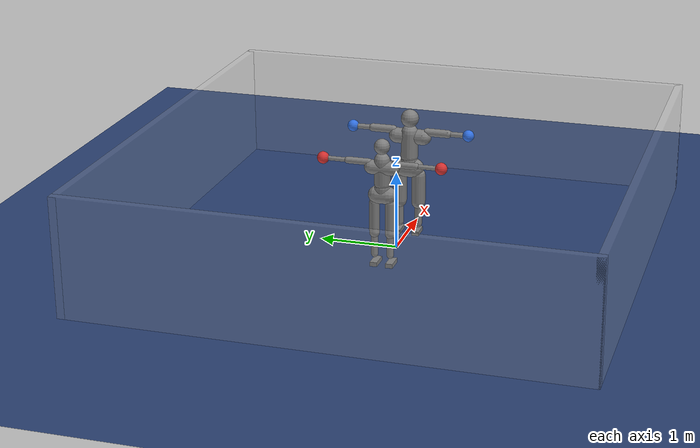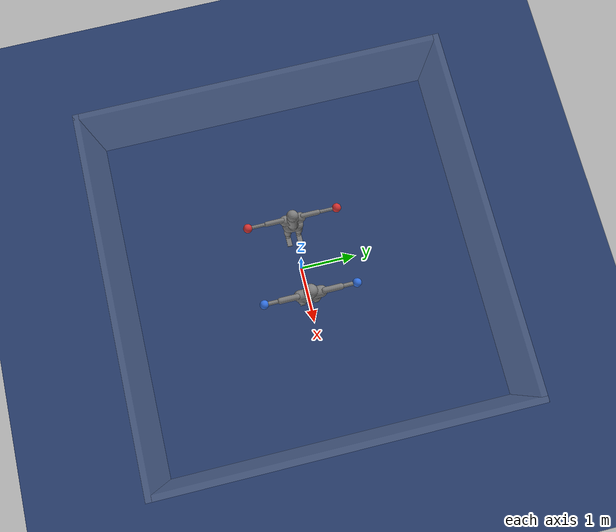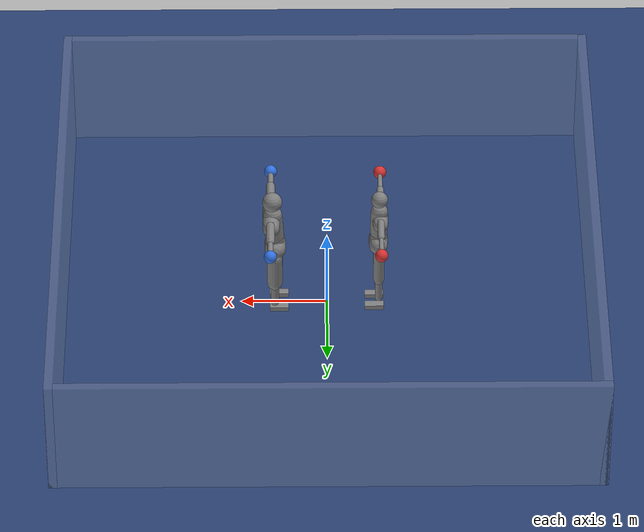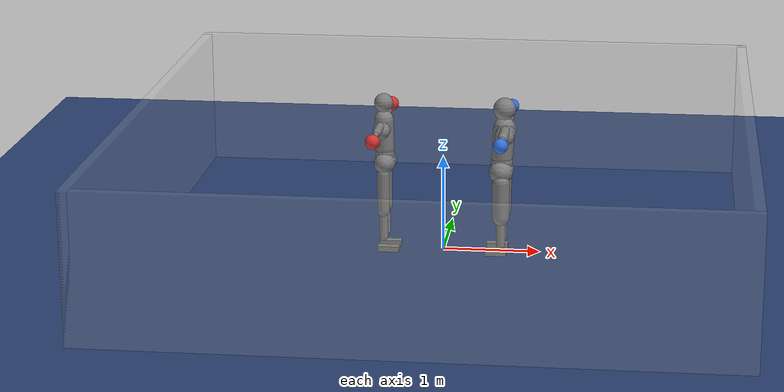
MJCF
<mujoco model="nick_vs_lilmatt_spar">
  <compiler angle="degree" inertiafromgeom="true" autolimits="true"/>
  <option timestep="0.005" iterations="10" ls_iterations="10" integrator="implicitfast">
    <flag eulerdamp="disable"/>
  </option>
  <default>
    <geom contype="1" conaffinity="1" condim="3" friction="1.0 0.005 0.0001" density="1000" margin="0"/>
    <joint limited="true"/>
    <position ctrllimited="true"/>
  </default>
  <asset>
    <texture name="grid" type="2d" builtin="checker" rgb1=".18 .28 .48" rgb2=".14 .22 .40" width="300" height="300"/>
    <material name="grid" texture="grid" texrepeat="6 6" reflectance="0"/>
  </asset>
  <worldbody>
    <light pos="0 0 5" dir="0 0 -1" directional="true"/>
    <geom name="floor" type="plane" size="0 0 0.05" material="grid" friction="1.0 0.005 0.0001"/>
    <geom name="rope_n" type="box" pos="0.0000 3.1000 0.7500" size="3.1500 0.0500 0.7500" rgba="0.8 0.8 0.8 0.15"/>
    <geom name="rope_s" type="box" pos="0.0000 -3.1000 0.7500" size="3.1500 0.0500 0.7500" rgba="0.8 0.8 0.8 0.15"/>
    <geom name="rope_e" type="box" pos="3.1000 0.0000 0.7500" size="0.0500 3.1500 0.7500" rgba="0.8 0.8 0.8 0.15"/>
    <geom name="rope_w" type="box" pos="-3.1000 0.0000 0.7500" size="0.0500 3.1500 0.7500" rgba="0.8 0.8 0.8 0.15"/>
    <body name="a_pelvis" pos="-0.6000 0.0000 0.9269" quat="1.00000 0 0 0.00000">
      <freejoint name="a_root"/>
      <geom name="a_pelvis_geom" type="capsule" fromto="0.0000 -0.0700 0.0000 0.0000 0.0700 0.0000" size="0.1090" mass="4.9049" />
      <geom name="a_pelvis_up" type="capsule" fromto="0.0000 0.0000 0.0000 -0.0026 0.0000 0.1033" size="0.0981" mass="3.2601" />
      <body name="a_torso" pos="-0.0026 0.0000 0.1233">
        <joint name="a_abdomen_z" type="hinge" axis="0 0 1" range="-45 45" damping="0.5" armature="0.08" stiffness="0"/>
        <joint name="a_abdomen_y" type="hinge" axis="0 1 0" range="-60 30" damping="0.5" armature="0.08" stiffness="0"/>
        <joint name="a_abdomen_x" type="hinge" axis="1 0 0" range="-35 35" damping="0.5" armature="0.08" stiffness="0"/>
        <geom name="a_torso_geom" type="capsule" fromto="0.0000 0.0000 0.0200 -0.0072 0.0000 0.3240" size="0.0987" mass="20.4125" />
        <geom name="a_chest_geom" type="capsule" fromto="-0.0187 -0.1313 0.2370 -0.0187 0.1313 0.2370" size="0.0888" mass="0.5"/>
        <geom name="a_head_geom" type="sphere" pos="-0.0087 0.0000 0.5025" size="0.0973" mass="4.6575" />
        <body name="a_upper_arm_l" pos="-0.0234 0.1641 0.2962">
          <joint name="a_shoulder_x_l" type="hinge" axis="1 0 0" range="-170 30" damping="0.5" armature="0.03" stiffness="0"/>
          <joint name="a_shoulder_z_l" type="hinge" axis="0 0 1" range="-110 110" damping="0.5" armature="0.03" stiffness="0"/>
          <geom name="a_upper_arm_l_geom" type="capsule" fromto="0.0000 0.0000 0.0000 0.0000 0.2664 0.0000" size="0.0419" mass="1.6100" />
          <body name="a_forearm_l" pos="0.0000 0.2664 0.0000">
            <joint name="a_elbow_l" type="hinge" axis="0 0 1" range="-150 0" damping="0.5" armature="0.02" stiffness="0"/>
            <geom name="a_forearm_l_geom" type="capsule" fromto="0.0000 0.0000 0.0000 0.0000 0.2467 0.0000" size="0.0280" mass="0.9200" />
            <geom name="a_glove_l" type="sphere" pos="0.0000 0.3142 0.0000" size="0.0750" mass="0.6280" rgba="0.85 0.2 0.2 1"/>
          </body>
        </body>
        <body name="a_upper_arm_r" pos="-0.0234 -0.1641 0.2962">
          <joint name="a_shoulder_x_r" type="hinge" axis="1 0 0" range="-30 170" damping="0.5" armature="0.03" stiffness="0"/>
          <joint name="a_shoulder_z_r" type="hinge" axis="0 0 1" range="-110 110" damping="0.5" armature="0.03" stiffness="0"/>
          <geom name="a_upper_arm_r_geom" type="capsule" fromto="0.0000 0.0000 0.0000 0.0000 -0.2664 0.0000" size="0.0419" mass="1.6100" />
          <body name="a_forearm_r" pos="0.0000 -0.2664 0.0000">
            <joint name="a_elbow_r" type="hinge" axis="0 0 1" range="0 150" damping="0.5" armature="0.02" stiffness="0"/>
            <geom name="a_forearm_r_geom" type="capsule" fromto="0.0000 0.0000 0.0000 0.0000 -0.2467 0.0000" size="0.0280" mass="0.9200" />
            <geom name="a_glove_r" type="sphere" pos="0.0000 -0.3142 0.0000" size="0.0750" mass="0.6280" rgba="0.85 0.2 0.2 1"/>
          </body>
        </body>
      </body>
      <body name="a_thigh_l" pos="-0.0079 0.1002 -0.0993">
        <joint name="a_hip_x_l" type="hinge" axis="1 0 0" range="-40 40" damping="0.5" armature="0.1" stiffness="0"/>
        <joint name="a_hip_z_l" type="hinge" axis="0 0 1" range="-35 35" damping="0.5" armature="0.1" stiffness="0"/>
        <joint name="a_hip_y_l" type="hinge" axis="0 1 0" range="-120 30" damping="0.5" armature="0.1" stiffness="0"/>
        <geom name="a_thigh_l_geom" type="capsule" fromto="0.0000 0.0000 0.0000 0.0000 0.0000 -0.4004" size="0.0639" mass="5.7500" />
        <body name="a_shin_l" pos="0.0000 0.0000 -0.4004">
          <joint name="a_knee_l" type="hinge" axis="0 1 0" range="0 150" damping="0.5" armature="0.1" stiffness="0"/>
          <geom name="a_shin_l_geom" type="capsule" fromto="0.0000 0.0000 0.0000 0.0000 0.0000 -0.2841" size="0.0429" mass="2.6738" />
          <body name="a_foot_l" pos="0.0000 0.0000 -0.2841">
            <joint name="a_ankle_y_l" type="hinge" axis="0 1 0" range="-20 50" damping="0.5" armature="0.03" stiffness="0"/>
            <joint name="a_ankle_x_l" type="hinge" axis="1 0 0" range="-25 25" damping="0.5" armature="0.03" stiffness="0"/>
            <geom name="a_foot_l_geom" type="box" pos="0.0506 0.0000 -0.1233" size="0.1100 0.0450 0.0280" mass="0.8337" friction="1.0 0.005 0.0001"/>
            <site name="a_foot_l_site" pos="0.0506 0.0000 -0.1233" size="0.01"/>
          </body>
        </body>
      </body>
      <body name="a_thigh_r" pos="-0.0079 -0.1002 -0.0993">
        <joint name="a_hip_x_r" type="hinge" axis="1 0 0" range="-40 40" damping="0.5" armature="0.1" stiffness="0"/>
        <joint name="a_hip_z_r" type="hinge" axis="0 0 1" range="-35 35" damping="0.5" armature="0.1" stiffness="0"/>
        <joint name="a_hip_y_r" type="hinge" axis="0 1 0" range="-120 30" damping="0.5" armature="0.1" stiffness="0"/>
        <geom name="a_thigh_r_geom" type="capsule" fromto="0.0000 0.0000 0.0000 0.0000 0.0000 -0.4004" size="0.0639" mass="5.7500" />
        <body name="a_shin_r" pos="0.0000 0.0000 -0.4004">
          <joint name="a_knee_r" type="hinge" axis="0 1 0" range="0 150" damping="0.5" armature="0.1" stiffness="0"/>
          <geom name="a_shin_r_geom" type="capsule" fromto="0.0000 0.0000 0.0000 0.0000 0.0000 -0.2841" size="0.0429" mass="2.6738" />
          <body name="a_foot_r" pos="0.0000 0.0000 -0.2841">
            <joint name="a_ankle_y_r" type="hinge" axis="0 1 0" range="-20 50" damping="0.5" armature="0.03" stiffness="0"/>
            <joint name="a_ankle_x_r" type="hinge" axis="1 0 0" range="-25 25" damping="0.5" armature="0.03" stiffness="0"/>
            <geom name="a_foot_r_geom" type="box" pos="0.0506 0.0000 -0.1233" size="0.1100 0.0450 0.0280" mass="0.8337" friction="1.0 0.005 0.0001"/>
            <site name="a_foot_r_site" pos="0.0506 0.0000 -0.1233" size="0.01"/>
          </body>
        </body>
      </body>
    </body>
    <body name="b_pelvis" pos="0.6000 0.0000 0.8672" quat="0.00000 0 0 1.00000">
      <freejoint name="b_root"/>
      <geom name="b_pelvis_geom" type="capsule" fromto="0.0000 -0.0700 0.0000 0.0000 0.0700 0.0000" size="0.1228" mass="6.8132" />
      <geom name="b_pelvis_up" type="capsule" fromto="0.0000 0.0000 0.0000 -0.0066 0.0000 0.1058" size="0.1105" mass="4.6036" />
      <body name="b_torso" pos="-0.0066 0.0000 0.1258">
        <joint name="b_abdomen_z" type="hinge" axis="0 0 1" range="-45 45" damping="0.5" armature="0.08" stiffness="0"/>
        <joint name="b_abdomen_y" type="hinge" axis="0 1 0" range="-60 30" damping="0.5" armature="0.08" stiffness="0"/>
        <joint name="b_abdomen_x" type="hinge" axis="1 0 0" range="-35 35" damping="0.5" armature="0.08" stiffness="0"/>
        <geom name="b_torso_geom" type="capsule" fromto="0.0000 0.0000 0.0200 -0.0181 0.0000 0.3354" size="0.1100" mass="28.5420" />
        <geom name="b_chest_geom" type="capsule" fromto="-0.0347 -0.1786 0.2850 -0.0347 0.1786 0.2850" size="0.0990" mass="0.5"/>
        <geom name="b_head_geom" type="sphere" pos="-0.0217 0.0000 0.5289" size="0.1155" mass="6.5124" />
        <body name="b_upper_arm_l" pos="-0.0434 0.2232 0.3563">
          <joint name="b_shoulder_x_l" type="hinge" axis="1 0 0" range="-170 30" damping="0.5" armature="0.03" stiffness="0"/>
          <joint name="b_shoulder_z_l" type="hinge" axis="0 0 1" range="-110 110" damping="0.5" armature="0.03" stiffness="0"/>
          <geom name="b_upper_arm_l_geom" type="capsule" fromto="0.0000 0.0000 0.0000 0.0000 0.2758 0.0000" size="0.0508" mass="2.2512" />
          <body name="b_forearm_l" pos="0.0000 0.2758 0.0000">
            <joint name="b_elbow_l" type="hinge" axis="0 0 1" range="-150 0" damping="0.5" armature="0.02" stiffness="0"/>
            <geom name="b_forearm_l_geom" type="capsule" fromto="0.0000 0.0000 0.0000 0.0000 0.1970 0.0000" size="0.0332" mass="1.2864" />
            <geom name="b_glove_l" type="sphere" pos="0.0000 0.2645 0.0000" size="0.0750" mass="0.7654" rgba="0.2 0.45 0.9 1"/>
          </body>
        </body>
        <body name="b_upper_arm_r" pos="-0.0434 -0.2232 0.3563">
          <joint name="b_shoulder_x_r" type="hinge" axis="1 0 0" range="-30 170" damping="0.5" armature="0.03" stiffness="0"/>
          <joint name="b_shoulder_z_r" type="hinge" axis="0 0 1" range="-110 110" damping="0.5" armature="0.03" stiffness="0"/>
          <geom name="b_upper_arm_r_geom" type="capsule" fromto="0.0000 0.0000 0.0000 0.0000 -0.2758 0.0000" size="0.0508" mass="2.2512" />
          <body name="b_forearm_r" pos="0.0000 -0.2758 0.0000">
            <joint name="b_elbow_r" type="hinge" axis="0 0 1" range="0 150" damping="0.5" armature="0.02" stiffness="0"/>
            <geom name="b_forearm_r_geom" type="capsule" fromto="0.0000 0.0000 0.0000 0.0000 -0.1970 0.0000" size="0.0332" mass="1.2864" />
            <geom name="b_glove_r" type="sphere" pos="0.0000 -0.2645 0.0000" size="0.0750" mass="0.7654" rgba="0.2 0.45 0.9 1"/>
          </body>
        </body>
      </body>
      <body name="b_thigh_l" pos="-0.0061 0.1244 -0.0919">
        <joint name="b_hip_x_l" type="hinge" axis="1 0 0" range="-40 40" damping="0.5" armature="0.1" stiffness="0"/>
        <joint name="b_hip_z_l" type="hinge" axis="0 0 1" range="-35 35" damping="0.5" armature="0.1" stiffness="0"/>
        <joint name="b_hip_y_l" type="hinge" axis="0 1 0" range="-120 30" damping="0.5" armature="0.1" stiffness="0"/>
        <geom name="b_thigh_l_geom" type="capsule" fromto="0.0000 0.0000 0.0000 0.0000 0.0000 -0.3718" size="0.0895" mass="8.0400" />
        <body name="b_shin_l" pos="0.0000 0.0000 -0.3718">
          <joint name="b_knee_l" type="hinge" axis="0 1 0" range="0 150" damping="0.5" armature="0.1" stiffness="0"/>
          <geom name="b_shin_l_geom" type="capsule" fromto="0.0000 0.0000 0.0000 0.0000 0.0000 -0.3036" size="0.0462" mass="3.7386" />
          <body name="b_foot_l" pos="0.0000 0.0000 -0.3036">
            <joint name="b_ankle_y_l" type="hinge" axis="0 1 0" range="-20 50" damping="0.5" armature="0.03" stiffness="0"/>
            <joint name="b_ankle_x_l" type="hinge" axis="1 0 0" range="-25 25" damping="0.5" armature="0.03" stiffness="0"/>
            <geom name="b_foot_l_geom" type="box" pos="0.0506 0.0000 -0.0797" size="0.1100 0.0450 0.0280" mass="1.1658" friction="1.0 0.005 0.0001"/>
            <site name="b_foot_l_site" pos="0.0506 0.0000 -0.0797" size="0.01"/>
          </body>
        </body>
      </body>
      <body name="b_thigh_r" pos="-0.0061 -0.1244 -0.0919">
        <joint name="b_hip_x_r" type="hinge" axis="1 0 0" range="-40 40" damping="0.5" armature="0.1" stiffness="0"/>
        <joint name="b_hip_z_r" type="hinge" axis="0 0 1" range="-35 35" damping="0.5" armature="0.1" stiffness="0"/>
        <joint name="b_hip_y_r" type="hinge" axis="0 1 0" range="-120 30" damping="0.5" armature="0.1" stiffness="0"/>
        <geom name="b_thigh_r_geom" type="capsule" fromto="0.0000 0.0000 0.0000 0.0000 0.0000 -0.3718" size="0.0895" mass="8.0400" />
        <body name="b_shin_r" pos="0.0000 0.0000 -0.3718">
          <joint name="b_knee_r" type="hinge" axis="0 1 0" range="0 150" damping="0.5" armature="0.1" stiffness="0"/>
          <geom name="b_shin_r_geom" type="capsule" fromto="0.0000 0.0000 0.0000 0.0000 0.0000 -0.3036" size="0.0462" mass="3.7386" />
          <body name="b_foot_r" pos="0.0000 0.0000 -0.3036">
            <joint name="b_ankle_y_r" type="hinge" axis="0 1 0" range="-20 50" damping="0.5" armature="0.03" stiffness="0"/>
            <joint name="b_ankle_x_r" type="hinge" axis="1 0 0" range="-25 25" damping="0.5" armature="0.03" stiffness="0"/>
            <geom name="b_foot_r_geom" type="box" pos="0.0506 0.0000 -0.0797" size="0.1100 0.0450 0.0280" mass="1.1658" friction="1.0 0.005 0.0001"/>
            <site name="b_foot_r_site" pos="0.0506 0.0000 -0.0797" size="0.01"/>
          </body>
        </body>
      </body>
    </body>
  </worldbody>
  <contact>
    <exclude body1="a_pelvis" body2="a_torso"/>
    <exclude body1="a_pelvis" body2="a_thigh_l"/>
    <exclude body1="a_thigh_l" body2="a_shin_l"/>
    <exclude body1="a_shin_l" body2="a_foot_l"/>
    <exclude body1="a_torso" body2="a_upper_arm_l"/>
    <exclude body1="a_upper_arm_l" body2="a_forearm_l"/>
    <exclude body1="a_pelvis" body2="a_thigh_r"/>
    <exclude body1="a_thigh_r" body2="a_shin_r"/>
    <exclude body1="a_shin_r" body2="a_foot_r"/>
    <exclude body1="a_torso" body2="a_upper_arm_r"/>
    <exclude body1="a_upper_arm_r" body2="a_forearm_r"/>
    <exclude body1="b_pelvis" body2="b_torso"/>
    <exclude body1="b_pelvis" body2="b_thigh_l"/>
    <exclude body1="b_thigh_l" body2="b_shin_l"/>
    <exclude body1="b_shin_l" body2="b_foot_l"/>
    <exclude body1="b_torso" body2="b_upper_arm_l"/>
    <exclude body1="b_upper_arm_l" body2="b_forearm_l"/>
    <exclude body1="b_pelvis" body2="b_thigh_r"/>
    <exclude body1="b_thigh_r" body2="b_shin_r"/>
    <exclude body1="b_shin_r" body2="b_foot_r"/>
    <exclude body1="b_torso" body2="b_upper_arm_r"/>
    <exclude body1="b_upper_arm_r" body2="b_forearm_r"/>
  </contact>
  <actuator>
    <position name="a_abdomen_z" joint="a_abdomen_z" kp="373.95" kv="17.451" forcerange="-141.27 141.27" ctrlrange="-0.7854 0.7854"/>
    <position name="a_abdomen_y" joint="a_abdomen_y" kp="373.95" kv="17.451" forcerange="-141.27 141.27" ctrlrange="-1.0472 0.5236"/>
    <position name="a_abdomen_x" joint="a_abdomen_x" kp="373.95" kv="17.451" forcerange="-141.27 141.27" ctrlrange="-0.6109 0.6109"/>
    <position name="a_shoulder_x_l" joint="a_shoulder_x_l" kp="132.96" kv="6.648" forcerange="-83.1 83.1" ctrlrange="-2.9671 0.5236"/>
    <position name="a_shoulder_z_l" joint="a_shoulder_z_l" kp="132.96" kv="6.648" forcerange="-83.1 83.1" ctrlrange="-1.9199 1.9199"/>
    <position name="a_elbow_l" joint="a_elbow_l" kp="91.41" kv="4.571" forcerange="-58.17 58.17" ctrlrange="-2.6180 0.0000"/>
    <position name="a_shoulder_x_r" joint="a_shoulder_x_r" kp="132.96" kv="6.648" forcerange="-83.1 83.1" ctrlrange="-0.5236 2.9671"/>
    <position name="a_shoulder_z_r" joint="a_shoulder_z_r" kp="132.96" kv="6.648" forcerange="-83.1 83.1" ctrlrange="-1.9199 1.9199"/>
    <position name="a_elbow_r" joint="a_elbow_r" kp="91.41" kv="4.571" forcerange="-58.17 58.17" ctrlrange="0.0000 2.6180"/>
    <position name="a_hip_x_l" joint="a_hip_x_l" kp="498.6" kv="24.93" forcerange="-199.44 199.44" ctrlrange="-0.6981 0.6981"/>
    <position name="a_hip_z_l" joint="a_hip_z_l" kp="498.6" kv="24.93" forcerange="-199.44 199.44" ctrlrange="-0.6109 0.6109"/>
    <position name="a_hip_y_l" joint="a_hip_y_l" kp="498.6" kv="24.93" forcerange="-199.44 199.44" ctrlrange="-2.0944 0.5236"/>
    <position name="a_knee_l" joint="a_knee_l" kp="498.6" kv="24.93" forcerange="-216.06 216.06" ctrlrange="0.0000 2.6180"/>
    <position name="a_ankle_y_l" joint="a_ankle_y_l" kp="623.25" kv="24.93" forcerange="-182.82 182.82" ctrlrange="-0.3491 0.8727"/>
    <position name="a_ankle_x_l" joint="a_ankle_x_l" kp="66.48" kv="3.324" forcerange="-49.86 49.86" ctrlrange="-0.4363 0.4363"/>
    <position name="a_hip_x_r" joint="a_hip_x_r" kp="498.6" kv="24.93" forcerange="-199.44 199.44" ctrlrange="-0.6981 0.6981"/>
    <position name="a_hip_z_r" joint="a_hip_z_r" kp="498.6" kv="24.93" forcerange="-199.44 199.44" ctrlrange="-0.6109 0.6109"/>
    <position name="a_hip_y_r" joint="a_hip_y_r" kp="498.6" kv="24.93" forcerange="-199.44 199.44" ctrlrange="-2.0944 0.5236"/>
    <position name="a_knee_r" joint="a_knee_r" kp="498.6" kv="24.93" forcerange="-216.06 216.06" ctrlrange="0.0000 2.6180"/>
    <position name="a_ankle_y_r" joint="a_ankle_y_r" kp="623.25" kv="24.93" forcerange="-182.82 182.82" ctrlrange="-0.3491 0.8727"/>
    <position name="a_ankle_x_r" joint="a_ankle_x_r" kp="66.48" kv="3.324" forcerange="-49.86 49.86" ctrlrange="-0.4363 0.4363"/>
    <position name="b_abdomen_z" joint="b_abdomen_z" kp="368.1" kv="17.178" forcerange="-139.06 139.06" ctrlrange="-0.7854 0.7854"/>
    <position name="b_abdomen_y" joint="b_abdomen_y" kp="368.1" kv="17.178" forcerange="-139.06 139.06" ctrlrange="-1.0472 0.5236"/>
    <position name="b_abdomen_x" joint="b_abdomen_x" kp="368.1" kv="17.178" forcerange="-139.06 139.06" ctrlrange="-0.6109 0.6109"/>
    <position name="b_shoulder_x_l" joint="b_shoulder_x_l" kp="130.88" kv="6.544" forcerange="-81.8 81.8" ctrlrange="-2.9671 0.5236"/>
    <position name="b_shoulder_z_l" joint="b_shoulder_z_l" kp="130.88" kv="6.544" forcerange="-81.8 81.8" ctrlrange="-1.9199 1.9199"/>
    <position name="b_elbow_l" joint="b_elbow_l" kp="89.98" kv="4.499" forcerange="-57.26 57.26" ctrlrange="-2.6180 0.0000"/>
    <position name="b_shoulder_x_r" joint="b_shoulder_x_r" kp="130.88" kv="6.544" forcerange="-81.8 81.8" ctrlrange="-0.5236 2.9671"/>
    <position name="b_shoulder_z_r" joint="b_shoulder_z_r" kp="130.88" kv="6.544" forcerange="-81.8 81.8" ctrlrange="-1.9199 1.9199"/>
    <position name="b_elbow_r" joint="b_elbow_r" kp="89.98" kv="4.499" forcerange="-57.26 57.26" ctrlrange="0.0000 2.6180"/>
    <position name="b_hip_x_l" joint="b_hip_x_l" kp="490.8" kv="24.54" forcerange="-196.32 196.32" ctrlrange="-0.6981 0.6981"/>
    <position name="b_hip_z_l" joint="b_hip_z_l" kp="490.8" kv="24.54" forcerange="-196.32 196.32" ctrlrange="-0.6109 0.6109"/>
    <position name="b_hip_y_l" joint="b_hip_y_l" kp="490.8" kv="24.54" forcerange="-196.32 196.32" ctrlrange="-2.0944 0.5236"/>
    <position name="b_knee_l" joint="b_knee_l" kp="490.8" kv="24.54" forcerange="-212.68 212.68" ctrlrange="0.0000 2.6180"/>
    <position name="b_ankle_y_l" joint="b_ankle_y_l" kp="613.5" kv="24.54" forcerange="-179.96 179.96" ctrlrange="-0.3491 0.8727"/>
    <position name="b_ankle_x_l" joint="b_ankle_x_l" kp="65.44" kv="3.272" forcerange="-49.08 49.08" ctrlrange="-0.4363 0.4363"/>
    <position name="b_hip_x_r" joint="b_hip_x_r" kp="490.8" kv="24.54" forcerange="-196.32 196.32" ctrlrange="-0.6981 0.6981"/>
    <position name="b_hip_z_r" joint="b_hip_z_r" kp="490.8" kv="24.54" forcerange="-196.32 196.32" ctrlrange="-0.6109 0.6109"/>
    <position name="b_hip_y_r" joint="b_hip_y_r" kp="490.8" kv="24.54" forcerange="-196.32 196.32" ctrlrange="-2.0944 0.5236"/>
    <position name="b_knee_r" joint="b_knee_r" kp="490.8" kv="24.54" forcerange="-212.68 212.68" ctrlrange="0.0000 2.6180"/>
    <position name="b_ankle_y_r" joint="b_ankle_y_r" kp="613.5" kv="24.54" forcerange="-179.96 179.96" ctrlrange="-0.3491 0.8727"/>
    <position name="b_ankle_x_r" joint="b_ankle_x_r" kp="65.44" kv="3.272" forcerange="-49.08 49.08" ctrlrange="-0.4363 0.4363"/>
  </actuator>
  <keyframe>
    <key name="stand" qpos="-0.6000 0.0000 0.9199 1.00000 0 0 0.00000 0.0000 0.0000 0.0000 -1.3265 -0.7330 -1.9548 1.3265 0.7330 1.9548 0.0000 0.0000 -0.1635 0.4538 -0.2902 0.0000 0.0000 0.0000 -0.1635 0.4538 -0.2902 0.0000 0.6000 0.0000 0.8593 0.00000 0 0 1.00000 0.0000 0.0000 0.0000 -1.3265 -0.7330 -1.9548 1.3265 0.7330 1.9548 0.0000 0.0000 -0.1621 0.4538 -0.2916 0.0000 0.0000 0.0000 -0.1621 0.4538 -0.2916 0.0000"/>
  </keyframe>
</mujoco>
